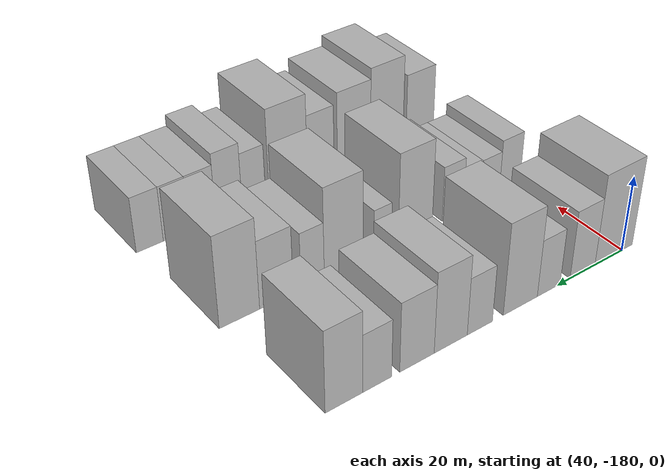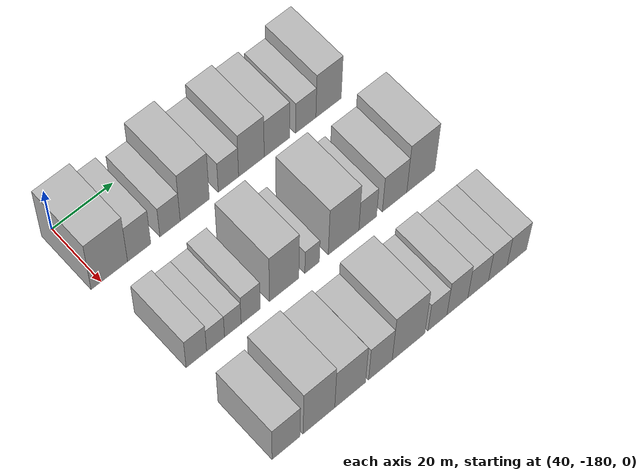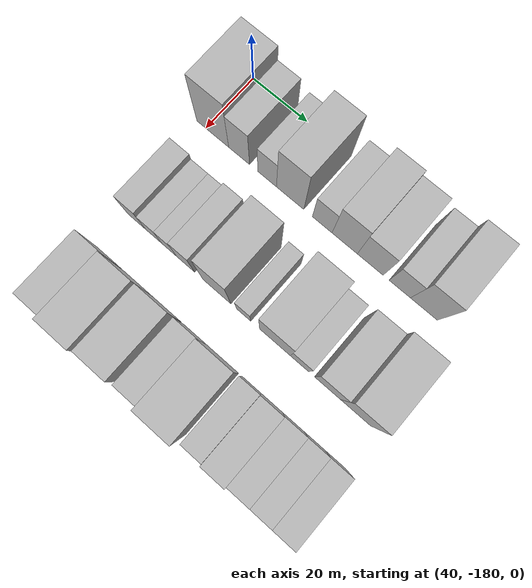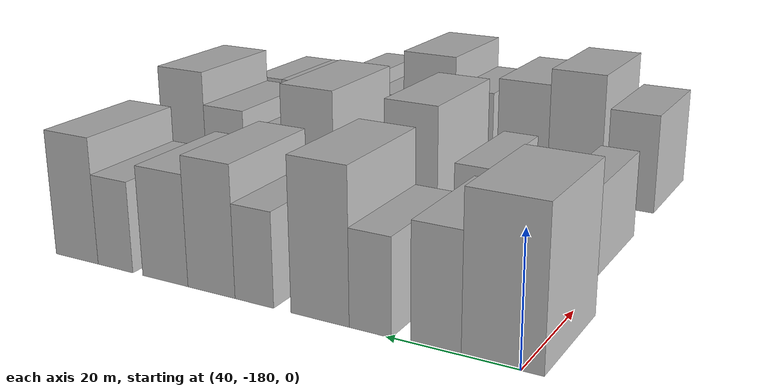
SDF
<sdf version="1.6">
 <world name="default">
  <model name="building_20">
   <static>1</static>
   <pose>50.0000 -177.3559 0 0.000000 0.000000 0.000000</pose>
   <link name="link">
    <pose>0 0 12.00 0 0 0</pose>
    <collision name="collision"><geometry><box><size>20.0000 11.8196 24.0000</size></box></geometry></collision>
    <visual name="visual">
     <cast_shadows>0</cast_shadows>
     <geometry><box><size>20.0000 11.8196 24.0000</size></box></geometry>
     <material>
      <script>
       <uri>model://HANNAS_wall/materials/scripts</uri>
       <uri>model://HANNAS_wall/materials/textures</uri>
       <name>vrc/HANNAS_wall</name>
      </script>
     </material>
    </visual>
   </link>
  </model>
  <model name="building_21">
   <static>1</static>
   <pose>50.0000 -167.6378 0 0.000000 0.000000 0.000000</pose>
   <link name="link">
    <pose>0 0 9.00 0 0 0</pose>
    <collision name="collision"><geometry><box><size>20.0000 7.6166 18.0000</size></box></geometry></collision>
    <visual name="visual">
     <cast_shadows>0</cast_shadows>
     <geometry><box><size>20.0000 7.6166 18.0000</size></box></geometry>
     <material>
      <script>
       <uri>model://HANNAS_wall/materials/scripts</uri>
       <uri>model://HANNAS_wall/materials/textures</uri>
       <name>vrc/HANNAS_wall</name>
      </script>
     </material>
    </visual>
   </link>
  </model>
  <model name="building_22">
   <static>1</static>
   <pose>50.0000 -157.4717 0 0.000000 0.000000 0.000000</pose>
   <link name="link">
    <pose>0 0 7.50 0 0 0</pose>
    <collision name="collision"><geometry><box><size>20.0000 6.7156 15.0000</size></box></geometry></collision>
    <visual name="visual">
     <cast_shadows>0</cast_shadows>
     <geometry><box><size>20.0000 6.7156 15.0000</size></box></geometry>
     <material>
      <script>
       <uri>model://HANNAS_wall/materials/scripts</uri>
       <uri>model://HANNAS_wall/materials/textures</uri>
       <name>vrc/HANNAS_wall</name>
      </script>
     </material>
    </visual>
   </link>
  </model>
  <model name="building_23">
   <static>1</static>
   <pose>50.0000 -149.2440 0 0.000000 0.000000 0.000000</pose>
   <link name="link">
    <pose>0 0 12.00 0 0 0</pose>
    <collision name="collision"><geometry><box><size>20.0000 9.7397 24.0000</size></box></geometry></collision>
    <visual name="visual">
     <cast_shadows>0</cast_shadows>
     <geometry><box><size>20.0000 9.7397 24.0000</size></box></geometry>
     <material>
      <script>
       <uri>model://HANNAS_wall/materials/scripts</uri>
       <uri>model://HANNAS_wall/materials/textures</uri>
       <name>vrc/HANNAS_wall</name>
      </script>
     </material>
    </visual>
   </link>
  </model>
  <model name="building_24">
   <static>1</static>
   <pose>50.0000 -137.9327 0 0.000000 0.000000 0.000000</pose>
   <link name="link">
    <pose>0 0 7.50 0 0 0</pose>
    <collision name="collision"><geometry><box><size>20.0000 6.8829 15.0000</size></box></geometry></collision>
    <visual name="visual">
     <cast_shadows>0</cast_shadows>
     <geometry><box><size>20.0000 6.8829 15.0000</size></box></geometry>
     <material>
      <script>
       <uri>model://HANNAS_wall/materials/scripts</uri>
       <uri>model://HANNAS_wall/materials/textures</uri>
       <name>vrc/HANNAS_wall</name>
      </script>
     </material>
    </visual>
   </link>
  </model>
  <model name="building_25">
   <static>1</static>
   <pose>50.0000 -130.1155 0 0.000000 0.000000 0.000000</pose>
   <link name="link">
    <pose>0 0 10.50 0 0 0</pose>
    <collision name="collision"><geometry><box><size>20.0000 8.7515 21.0000</size></box></geometry></collision>
    <visual name="visual">
     <cast_shadows>0</cast_shadows>
     <geometry><box><size>20.0000 8.7515 21.0000</size></box></geometry>
     <material>
      <script>
       <uri>model://HANNAS_wall/materials/scripts</uri>
       <uri>model://HANNAS_wall/materials/textures</uri>
       <name>vrc/HANNAS_wall</name>
      </script>
     </material>
    </visual>
   </link>
  </model>
  <model name="building_26">
   <static>1</static>
   <pose>50.0000 -121.3373 0 0.000000 0.000000 0.000000</pose>
   <link name="link">
    <pose>0 0 9.00 0 0 0</pose>
    <collision name="collision"><geometry><box><size>20.0000 8.8049 18.0000</size></box></geometry></collision>
    <visual name="visual">
     <cast_shadows>0</cast_shadows>
     <geometry><box><size>20.0000 8.8049 18.0000</size></box></geometry>
     <material>
      <script>
       <uri>model://HANNAS_wall/materials/scripts</uri>
       <uri>model://HANNAS_wall/materials/textures</uri>
       <name>vrc/HANNAS_wall</name>
      </script>
     </material>
    </visual>
   </link>
  </model>
  <model name="building_27">
   <static>1</static>
   <pose>50.0000 -111.3800 0 0.000000 0.000000 0.000000</pose>
   <link name="link">
    <pose>0 0 7.50 0 0 0</pose>
    <collision name="collision"><geometry><box><size>20.0000 7.1098 15.0000</size></box></geometry></collision>
    <visual name="visual">
     <cast_shadows>0</cast_shadows>
     <geometry><box><size>20.0000 7.1098 15.0000</size></box></geometry>
     <material>
      <script>
       <uri>model://HANNAS_wall/materials/scripts</uri>
       <uri>model://HANNAS_wall/materials/textures</uri>
       <name>vrc/HANNAS_wall</name>
      </script>
     </material>
    </visual>
   </link>
  </model>
  <model name="building_28">
   <static>1</static>
   <pose>50.0000 -103.3615 0 0.000000 0.000000 0.000000</pose>
   <link name="link">
    <pose>0 0 10.50 0 0 0</pose>
    <collision name="collision"><geometry><box><size>20.0000 8.9272 21.0000</size></box></geometry></collision>
    <visual name="visual">
     <cast_shadows>0</cast_shadows>
     <geometry><box><size>20.0000 8.9272 21.0000</size></box></geometry>
     <material>
      <script>
       <uri>model://HANNAS_wall/materials/scripts</uri>
       <uri>model://HANNAS_wall/materials/textures</uri>
       <name>vrc/HANNAS_wall</name>
      </script>
     </material>
    </visual>
   </link>
  </model>
  <model name="building_95">
   <static>1</static>
   <pose>82.0000 -175.7835 0 0.000000 0.000000 0.000000</pose>
   <link name="link">
    <pose>0 0 7.50 0 0 0</pose>
    <collision name="collision"><geometry><box><size>20.0000 6.6079 15.0000</size></box></geometry></collision>
    <visual name="visual">
     <cast_shadows>0</cast_shadows>
     <geometry><box><size>20.0000 6.6079 15.0000</size></box></geometry>
     <material>
      <script>
       <uri>model://HANNAS_wall/materials/scripts</uri>
       <uri>model://HANNAS_wall/materials/textures</uri>
       <name>vrc/HANNAS_wall</name>
      </script>
     </material>
    </visual>
   </link>
  </model>
  <model name="building_96">
   <static>1</static>
   <pose>82.0000 -169.5654 0 0.000000 0.000000 0.000000</pose>
   <link name="link">
    <pose>0 0 6.00 0 0 0</pose>
    <collision name="collision"><geometry><box><size>20.0000 5.8284 12.0000</size></box></geometry></collision>
    <visual name="visual">
     <cast_shadows>0</cast_shadows>
     <geometry><box><size>20.0000 5.8284 12.0000</size></box></geometry>
     <material>
      <script>
       <uri>model://HANNAS_wall/materials/scripts</uri>
       <uri>model://HANNAS_wall/materials/textures</uri>
       <name>vrc/HANNAS_wall</name>
      </script>
     </material>
    </visual>
   </link>
  </model>
  <model name="building_97">
   <static>1</static>
   <pose>82.0000 -163.9446 0 0.000000 0.000000 0.000000</pose>
   <link name="link">
    <pose>0 0 6.00 0 0 0</pose>
    <collision name="collision"><geometry><box><size>20.0000 5.4131 12.0000</size></box></geometry></collision>
    <visual name="visual">
     <cast_shadows>0</cast_shadows>
     <geometry><box><size>20.0000 5.4131 12.0000</size></box></geometry>
     <material>
      <script>
       <uri>model://HANNAS_wall/materials/scripts</uri>
       <uri>model://HANNAS_wall/materials/textures</uri>
       <name>vrc/HANNAS_wall</name>
      </script>
     </material>
    </visual>
   </link>
  </model>
  <model name="building_98">
   <static>1</static>
   <pose>82.0000 -158.0741 0 0.000000 0.000000 0.000000</pose>
   <link name="link">
    <pose>0 0 7.50 0 0 0</pose>
    <collision name="collision"><geometry><box><size>20.0000 6.3278 15.0000</size></box></geometry></collision>
    <visual name="visual">
     <cast_shadows>0</cast_shadows>
     <geometry><box><size>20.0000 6.3278 15.0000</size></box></geometry>
     <material>
      <script>
       <uri>model://HANNAS_wall/materials/scripts</uri>
       <uri>model://HANNAS_wall/materials/textures</uri>
       <name>vrc/HANNAS_wall</name>
      </script>
     </material>
    </visual>
   </link>
  </model>
  <model name="building_99">
   <static>1</static>
   <pose>82.0000 -147.0016 0 0.000000 0.000000 0.000000</pose>
   <link name="link">
    <pose>0 0 12.00 0 0 0</pose>
    <collision name="collision"><geometry><box><size>20.0000 9.8173 24.0000</size></box></geometry></collision>
    <visual name="visual">
     <cast_shadows>0</cast_shadows>
     <geometry><box><size>20.0000 9.8173 24.0000</size></box></geometry>
     <material>
      <script>
       <uri>model://HANNAS_wall/materials/scripts</uri>
       <uri>model://HANNAS_wall/materials/textures</uri>
       <name>vrc/HANNAS_wall</name>
      </script>
     </material>
    </visual>
   </link>
  </model>
  <model name="building_100">
   <static>1</static>
   <pose>82.0000 -137.6411 0 0.000000 0.000000 0.000000</pose>
   <link name="link">
    <pose>0 0 6.00 0 0 0</pose>
    <collision name="collision"><geometry><box><size>20.0000 4.9037 12.0000</size></box></geometry></collision>
    <visual name="visual">
     <cast_shadows>0</cast_shadows>
     <geometry><box><size>20.0000 4.9037 12.0000</size></box></geometry>
     <material>
      <script>
       <uri>model://HANNAS_wall/materials/scripts</uri>
       <uri>model://HANNAS_wall/materials/textures</uri>
       <name>vrc/HANNAS_wall</name>
      </script>
     </material>
    </visual>
   </link>
  </model>
  <model name="building_101">
   <static>1</static>
   <pose>82.0000 -126.9586 0 0.000000 0.000000 0.000000</pose>
   <link name="link">
    <pose>0 0 12.00 0 0 0</pose>
    <collision name="collision"><geometry><box><size>20.0000 10.4613 24.0000</size></box></geometry></collision>
    <visual name="visual">
     <cast_shadows>0</cast_shadows>
     <geometry><box><size>20.0000 10.4613 24.0000</size></box></geometry>
     <material>
      <script>
       <uri>model://HANNAS_wall/materials/scripts</uri>
       <uri>model://HANNAS_wall/materials/textures</uri>
       <name>vrc/HANNAS_wall</name>
      </script>
     </material>
    </visual>
   </link>
  </model>
  <model name="building_102">
   <static>1</static>
   <pose>82.0000 -118.6799 0 0.000000 0.000000 0.000000</pose>
   <link name="link">
    <pose>0 0 7.50 0 0 0</pose>
    <collision name="collision"><geometry><box><size>20.0000 6.0960 15.0000</size></box></geometry></collision>
    <visual name="visual">
     <cast_shadows>0</cast_shadows>
     <geometry><box><size>20.0000 6.0960 15.0000</size></box></geometry>
     <material>
      <script>
       <uri>model://HANNAS_wall/materials/scripts</uri>
       <uri>model://HANNAS_wall/materials/textures</uri>
       <name>vrc/HANNAS_wall</name>
      </script>
     </material>
    </visual>
   </link>
  </model>
  <model name="building_103">
   <static>1</static>
   <pose>82.0000 -109.3745 0 0.000000 0.000000 0.000000</pose>
   <link name="link">
    <pose>0 0 9.00 0 0 0</pose>
    <collision name="collision"><geometry><box><size>20.0000 8.5147 18.0000</size></box></geometry></collision>
    <visual name="visual">
     <cast_shadows>0</cast_shadows>
     <geometry><box><size>20.0000 8.5147 18.0000</size></box></geometry>
     <material>
      <script>
       <uri>model://HANNAS_wall/materials/scripts</uri>
       <uri>model://HANNAS_wall/materials/textures</uri>
       <name>vrc/HANNAS_wall</name>
      </script>
     </material>
    </visual>
   </link>
  </model>
  <model name="building_104">
   <static>1</static>
   <pose>82.0000 -100.1767 0 0.000000 0.000000 0.000000</pose>
   <link name="link">
    <pose>0 0 12.00 0 0 0</pose>
    <collision name="collision"><geometry><box><size>20.0000 9.8809 24.0000</size></box></geometry></collision>
    <visual name="visual">
     <cast_shadows>0</cast_shadows>
     <geometry><box><size>20.0000 9.8809 24.0000</size></box></geometry>
     <material>
      <script>
       <uri>model://HANNAS_wall/materials/scripts</uri>
       <uri>model://HANNAS_wall/materials/textures</uri>
       <name>vrc/HANNAS_wall</name>
      </script>
     </material>
    </visual>
   </link>
  </model>
  <model name="building_174">
   <static>1</static>
   <pose>114.0000 -174.5490 0 0.000000 0.000000 0.000000</pose>
   <link name="link">
    <pose>0 0 9.00 0 0 0</pose>
    <collision name="collision"><geometry><box><size>20.0000 8.9568 18.0000</size></box></geometry></collision>
    <visual name="visual">
     <cast_shadows>0</cast_shadows>
     <geometry><box><size>20.0000 8.9568 18.0000</size></box></geometry>
     <material>
      <script>
       <uri>model://HANNAS_wall/materials/scripts</uri>
       <uri>model://HANNAS_wall/materials/textures</uri>
       <name>vrc/HANNAS_wall</name>
      </script>
     </material>
    </visual>
   </link>
  </model>
  <model name="building_175">
   <static>1</static>
   <pose>114.0000 -163.9231 0 0.000000 0.000000 0.000000</pose>
   <link name="link">
    <pose>0 0 12.00 0 0 0</pose>
    <collision name="collision"><geometry><box><size>20.0000 10.2950 24.0000</size></box></geometry></collision>
    <visual name="visual">
     <cast_shadows>0</cast_shadows>
     <geometry><box><size>20.0000 10.2950 24.0000</size></box></geometry>
     <material>
      <script>
       <uri>model://HANNAS_wall/materials/scripts</uri>
       <uri>model://HANNAS_wall/materials/textures</uri>
       <name>vrc/HANNAS_wall</name>
      </script>
     </material>
    </visual>
   </link>
  </model>
  <model name="building_176">
   <static>1</static>
   <pose>114.0000 -153.7016 0 0.000000 0.000000 0.000000</pose>
   <link name="link">
    <pose>0 0 10.50 0 0 0</pose>
    <collision name="collision"><geometry><box><size>20.0000 10.1480 21.0000</size></box></geometry></collision>
    <visual name="visual">
     <cast_shadows>0</cast_shadows>
     <geometry><box><size>20.0000 10.1480 21.0000</size></box></geometry>
     <material>
      <script>
       <uri>model://HANNAS_wall/materials/scripts</uri>
       <uri>model://HANNAS_wall/materials/textures</uri>
       <name>vrc/HANNAS_wall</name>
      </script>
     </material>
    </visual>
   </link>
  </model>
  <model name="building_177">
   <static>1</static>
   <pose>114.0000 -143.6958 0 0.000000 0.000000 0.000000</pose>
   <link name="link">
    <pose>0 0 9.00 0 0 0</pose>
    <collision name="collision"><geometry><box><size>20.0000 7.8636 18.0000</size></box></geometry></collision>
    <visual name="visual">
     <cast_shadows>0</cast_shadows>
     <geometry><box><size>20.0000 7.8636 18.0000</size></box></geometry>
     <material>
      <script>
       <uri>model://HANNAS_wall/materials/scripts</uri>
       <uri>model://HANNAS_wall/materials/textures</uri>
       <name>vrc/HANNAS_wall</name>
      </script>
     </material>
    </visual>
   </link>
  </model>
  <model name="building_178">
   <static>1</static>
   <pose>114.0000 -134.2433 0 0.000000 0.000000 0.000000</pose>
   <link name="link">
    <pose>0 0 12.00 0 0 0</pose>
    <collision name="collision"><geometry><box><size>20.0000 11.0414 24.0000</size></box></geometry></collision>
    <visual name="visual">
     <cast_shadows>0</cast_shadows>
     <geometry><box><size>20.0000 11.0414 24.0000</size></box></geometry>
     <material>
      <script>
       <uri>model://HANNAS_wall/materials/scripts</uri>
       <uri>model://HANNAS_wall/materials/textures</uri>
       <name>vrc/HANNAS_wall</name>
      </script>
     </material>
    </visual>
   </link>
  </model>
  <model name="building_179">
   <static>1</static>
   <pose>114.0000 -124.4831 0 0.000000 0.000000 0.000000</pose>
   <link name="link">
    <pose>0 0 7.50 0 0 0</pose>
    <collision name="collision"><geometry><box><size>20.0000 6.4790 15.0000</size></box></geometry></collision>
    <visual name="visual">
     <cast_shadows>0</cast_shadows>
     <geometry><box><size>20.0000 6.4790 15.0000</size></box></geometry>
     <material>
      <script>
       <uri>model://HANNAS_wall/materials/scripts</uri>
       <uri>model://HANNAS_wall/materials/textures</uri>
       <name>vrc/HANNAS_wall</name>
      </script>
     </material>
    </visual>
   </link>
  </model>
  <model name="building_180">
   <static>1</static>
   <pose>114.0000 -117.6393 0 0.000000 0.000000 0.000000</pose>
   <link name="link">
    <pose>0 0 9.00 0 0 0</pose>
    <collision name="collision"><geometry><box><size>20.0000 7.2086 18.0000</size></box></geometry></collision>
    <visual name="visual">
     <cast_shadows>0</cast_shadows>
     <geometry><box><size>20.0000 7.2086 18.0000</size></box></geometry>
     <material>
      <script>
       <uri>model://HANNAS_wall/materials/scripts</uri>
       <uri>model://HANNAS_wall/materials/textures</uri>
       <name>vrc/HANNAS_wall</name>
      </script>
     </material>
    </visual>
   </link>
  </model>
  <model name="building_181">
   <static>1</static>
   <pose>114.0000 -110.4557 0 0.000000 0.000000 0.000000</pose>
   <link name="link">
    <pose>0 0 7.50 0 0 0</pose>
    <collision name="collision"><geometry><box><size>20.0000 7.1585 15.0000</size></box></geometry></collision>
    <visual name="visual">
     <cast_shadows>0</cast_shadows>
     <geometry><box><size>20.0000 7.1585 15.0000</size></box></geometry>
     <material>
      <script>
       <uri>model://HANNAS_wall/materials/scripts</uri>
       <uri>model://HANNAS_wall/materials/textures</uri>
       <name>vrc/HANNAS_wall</name>
      </script>
     </material>
    </visual>
   </link>
  </model>
  <model name="building_182">
   <static>1</static>
   <pose>114.0000 -103.6040 0 0.000000 0.000000 0.000000</pose>
   <link name="link">
    <pose>0 0 7.50 0 0 0</pose>
    <collision name="collision"><geometry><box><size>20.0000 6.5448 15.0000</size></box></geometry></collision>
    <visual name="visual">
     <cast_shadows>0</cast_shadows>
     <geometry><box><size>20.0000 6.5448 15.0000</size></box></geometry>
     <material>
      <script>
       <uri>model://HANNAS_wall/materials/scripts</uri>
       <uri>model://HANNAS_wall/materials/textures</uri>
       <name>vrc/HANNAS_wall</name>
      </script>
     </material>
    </visual>
   </link>
  </model>
  <model name="building_183">
   <static>1</static>
   <pose>114.0000 -96.9200 0 0.000000 0.000000 0.000000</pose>
   <link name="link">
    <pose>0 0 7.50 0 0 0</pose>
    <collision name="collision"><geometry><box><size>20.0000 6.8231 15.0000</size></box></geometry></collision>
    <visual name="visual">
     <cast_shadows>0</cast_shadows>
     <geometry><box><size>20.0000 6.8231 15.0000</size></box></geometry>
     <material>
      <script>
       <uri>model://HANNAS_wall/materials/scripts</uri>
       <uri>model://HANNAS_wall/materials/textures</uri>
       <name>vrc/HANNAS_wall</name>
      </script>
     </material>
    </visual>
   </link>
  </model>
 </world>
</sdf>
